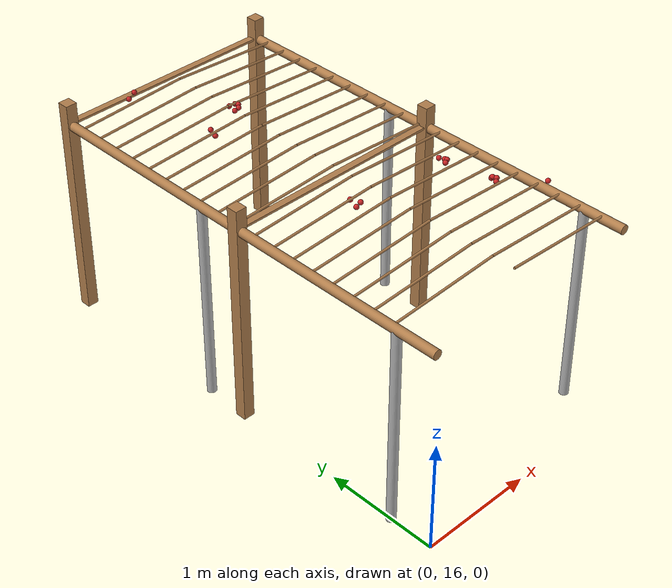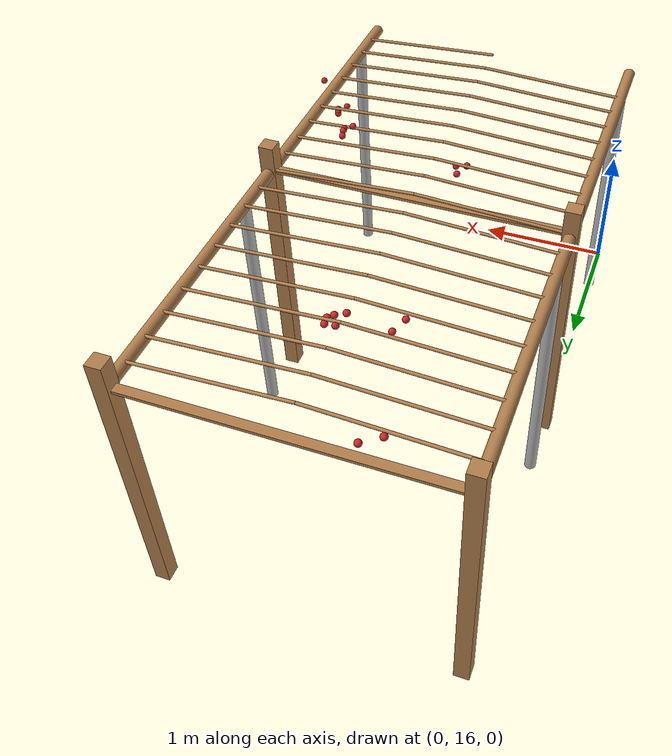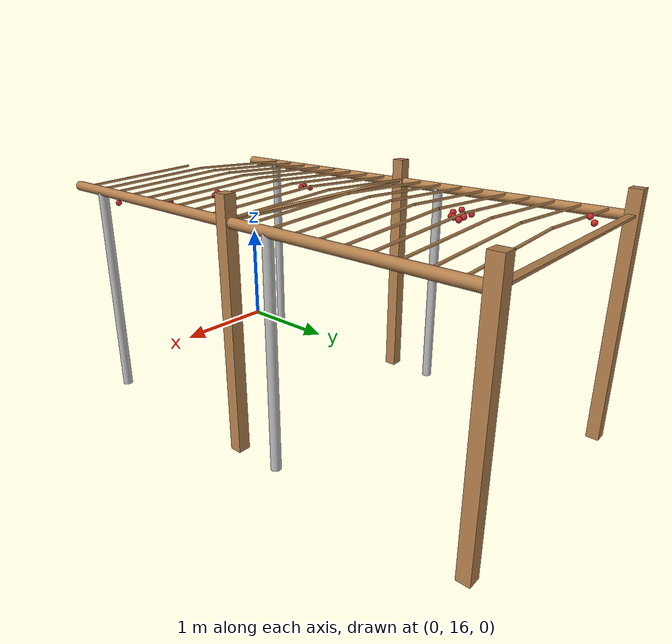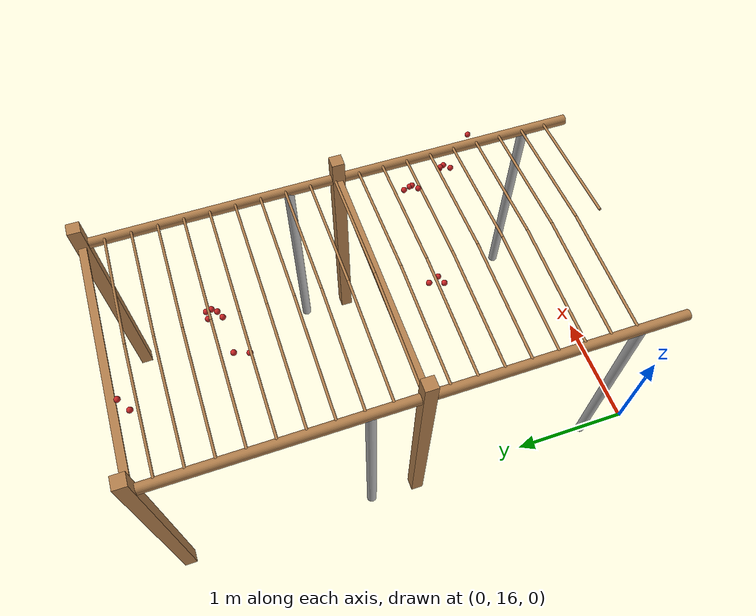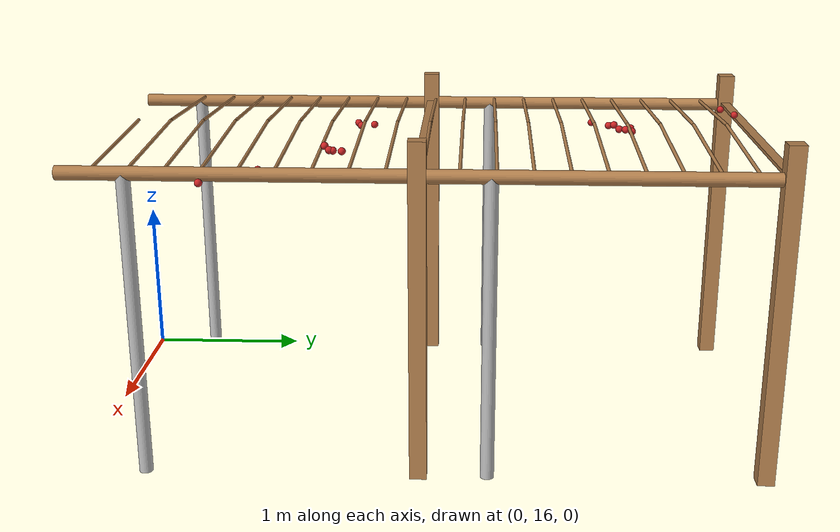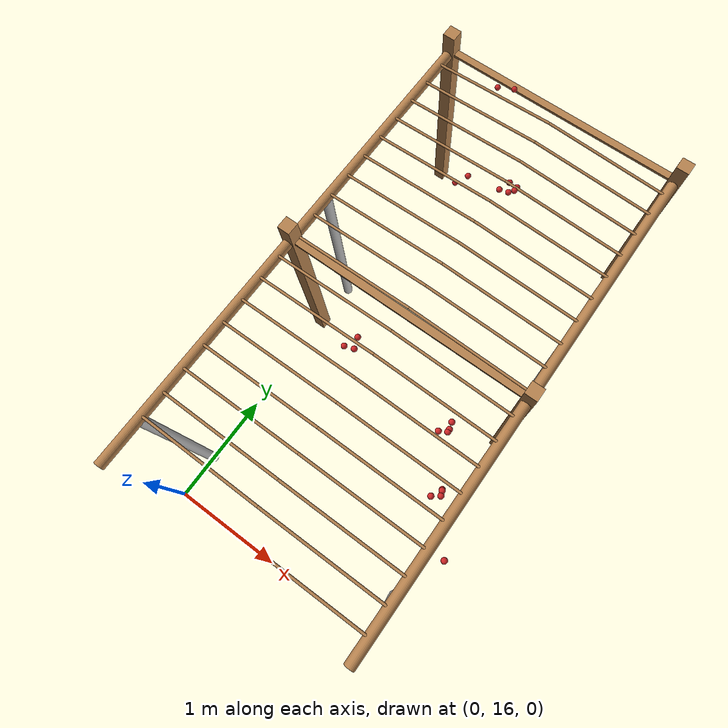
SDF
<sdf version="1.4">
 <model name="pergola">
  <include><name>post_9</name><pose>0.0 18.0 0 0 0 0</pose><uri>model://post</uri></include>
  <include><name>post_10</name><pose>0.0 20.0 0 0 0 0</pose><uri>model://post</uri></include>
  <include><name>post_20</name><pose>2.0 18.0 0 0 0 0</pose><uri>model://post</uri></include>
  <include><name>post_21</name><pose>2.0 20.0 0 0 0 0</pose><uri>model://post</uri></include>
  <link name="beam_9">
   <pose>1.0 18.0 1.81 0 0 0</pose>
   <collision name="collision"><geometry><box><size>2.0 0.06 0.02</size></box></geometry></collision>
   <visual name="visual">
    <geometry><box><size>2.0 0.06 0.02</size></box></geometry>
    <material><script><name>Gazebo/Wood</name></script></material>
   </visual>
   <inertial>
    <mass>5</mass>
    <inertia>
     <ixx>0.0016666666666666668</ixx>
     <ixy>0.0</ixy>
     <ixz>0.0</ixz>
     <iyy>1.6681666666666664</iyy>
     <iyz>0.0</iyz>
     <izz>1.6668333333333332</izz>
    </inertia>
   </inertial>
  </link>
  <link name="beam_10">
   <pose>1.0 20.0 1.81 0 0 0</pose>
   <collision name="collision"><geometry><box><size>2.0 0.06 0.02</size></box></geometry></collision>
   <visual name="visual">
    <geometry><box><size>2.0 0.06 0.02</size></box></geometry>
    <material><script><name>Gazebo/Wood</name></script></material>
   </visual>
   <inertial>
    <mass>5</mass>
    <inertia>
     <ixx>0.0016666666666666668</ixx>
     <ixy>0.0</ixy>
     <ixz>0.0</ixz>
     <iyy>1.6681666666666664</iyy>
     <iyz>0.0</iyz>
     <izz>1.6668333333333332</izz>
    </inertia>
   </inertial>
  </link>
  <include><name>tree_8</name><pose>0.0 16.4 0 0 0 0</pose><uri>model://tree_trunk</uri></include>
  <include><name>tree_9</name><pose>0.0 18.4 0 0 0 0</pose><uri>model://tree_trunk</uri></include>
  <include><name>tree_18</name><pose>2.0 16.4 0 0 0 0</pose><uri>model://tree_trunk</uri></include>
  <include><name>tree_19</name><pose>2.0 18.4 0 0 0 0</pose><uri>model://tree_trunk</uri></include>
  <link name="baseBranch_8">
   <pose>0.0 17.0 1.8 1.5707963267948966 0 0</pose>
   <collision name="collision">
    <geometry><cylinder><radius>0.04</radius><length>1.94</length></cylinder></geometry>
   </collision>
   <visual name="visual">
    <geometry><cylinder><radius>0.04</radius><length>1.94</length></cylinder></geometry>
    <material><script><name>Gazebo/WoodFloor</name></script></material>
   </visual>
   <inertial>
    <mass>10</mass>
    <inertia>
     <ixx>3.140333333333333</ixx>
     <ixy>0.0</ixy>
     <ixz>0.0</ixz>
     <iyy>3.140333333333333</iyy>
     <iyz>0.0</iyz>
     <izz>0.008</izz>
    </inertia>
   </inertial>
  </link>
  <link name="baseBranch_9">
   <pose>0.0 19.0 1.8 1.5707963267948966 0 0</pose>
   <collision name="collision">
    <geometry><cylinder><radius>0.04</radius><length>1.94</length></cylinder></geometry>
   </collision>
   <visual name="visual">
    <geometry><cylinder><radius>0.04</radius><length>1.94</length></cylinder></geometry>
    <material><script><name>Gazebo/WoodFloor</name></script></material>
   </visual>
   <inertial>
    <mass>10</mass>
    <inertia>
     <ixx>3.140333333333333</ixx>
     <ixy>0.0</ixy>
     <ixz>0.0</ixz>
     <iyy>3.140333333333333</iyy>
     <iyz>0.0</iyz>
     <izz>0.008</izz>
    </inertia>
   </inertial>
  </link>
  <link name="baseBranch_18">
   <pose>2.0 17.0 1.8 1.5707963267948966 0 0</pose>
   <collision name="collision">
    <geometry><cylinder><radius>0.04</radius><length>1.94</length></cylinder></geometry>
   </collision>
   <visual name="visual">
    <geometry><cylinder><radius>0.04</radius><length>1.94</length></cylinder></geometry>
    <material><script><name>Gazebo/WoodFloor</name></script></material>
   </visual>
   <inertial>
    <mass>10</mass>
    <inertia>
     <ixx>3.140333333333333</ixx>
     <ixy>0.0</ixy>
     <ixz>0.0</ixz>
     <iyy>3.140333333333333</iyy>
     <iyz>0.0</iyz>
     <izz>0.008</izz>
    </inertia>
   </inertial>
  </link>
  <link name="baseBranch_19">
   <pose>2.0 19.0 1.8 1.5707963267948966 0 0</pose>
   <collision name="collision">
    <geometry><cylinder><radius>0.04</radius><length>1.94</length></cylinder></geometry>
   </collision>
   <visual name="visual">
    <geometry><cylinder><radius>0.04</radius><length>1.94</length></cylinder></geometry>
    <material><script><name>Gazebo/WoodFloor</name></script></material>
   </visual>
   <inertial>
    <mass>10</mass>
    <inertia>
     <ixx>3.140333333333333</ixx>
     <ixy>0.0</ixy>
     <ixz>0.0</ixz>
     <iyy>3.140333333333333</iyy>
     <iyz>0.0</iyz>
     <izz>0.008</izz>
    </inertia>
   </inertial>
  </link>
  <link name="vine_163">
   <pose>1.5 16.23 1.85 0 -1.5208379310729538 0</pose>
   <collision name="collision">
    <geometry><cylinder><radius>0.01</radius><length>1.0012492197250393</length></cylinder></geometry>
   </collision>
   <visual name="visual">
    <geometry><cylinder><radius>0.01</radius><length>1.0012492197250393</length></cylinder></geometry>
    <material><script><name>Gazebo/WoodFloor</name></script></material>
   </visual>
   <inertial>
    <mass>5</mass>
    <inertia>
     <ixx>0.41783333333333345</ixx>
     <ixy>0.0</ixy>
     <ixz>0.0</ixz>
     <iyy>0.41783333333333345</iyy>
     <iyz>0.0</iyz>
     <izz>0.00025</izz>
    </inertia>
   </inertial>
  </link>
  <link name="vine_164">
   <pose>0.5 16.430000000000003 1.85 0 1.5208379310729538 0</pose>
   <collision name="collision">
    <geometry><cylinder><radius>0.01</radius><length>1.0012492197250393</length></cylinder></geometry>
   </collision>
   <visual name="visual">
    <geometry><cylinder><radius>0.01</radius><length>1.0012492197250393</length></cylinder></geometry>
    <material><script><name>Gazebo/WoodFloor</name></script></material>
   </visual>
   <inertial>
    <mass>5</mass>
    <inertia>
     <ixx>0.41783333333333345</ixx>
     <ixy>0.0</ixy>
     <ixz>0.0</ixz>
     <iyy>0.41783333333333345</iyy>
     <iyz>0.0</iyz>
     <izz>0.00025</izz>
    </inertia>
   </inertial>
  </link>
  <link name="vine_165">
   <pose>1.5 16.430000000000003 1.85 0 -1.5208379310729538 0</pose>
   <collision name="collision">
    <geometry><cylinder><radius>0.01</radius><length>1.0012492197250393</length></cylinder></geometry>
   </collision>
   <visual name="visual">
    <geometry><cylinder><radius>0.01</radius><length>1.0012492197250393</length></cylinder></geometry>
    <material><script><name>Gazebo/WoodFloor</name></script></material>
   </visual>
   <inertial>
    <mass>5</mass>
    <inertia>
     <ixx>0.41783333333333345</ixx>
     <ixy>0.0</ixy>
     <ixz>0.0</ixz>
     <iyy>0.41783333333333345</iyy>
     <iyz>0.0</iyz>
     <izz>0.00025</izz>
    </inertia>
   </inertial>
  </link>
  <link name="vine_166">
   <pose>0.5 16.630000000000003 1.85 0 1.5208379310729538 0</pose>
   <collision name="collision">
    <geometry><cylinder><radius>0.01</radius><length>1.0012492197250393</length></cylinder></geometry>
   </collision>
   <visual name="visual">
    <geometry><cylinder><radius>0.01</radius><length>1.0012492197250393</length></cylinder></geometry>
    <material><script><name>Gazebo/WoodFloor</name></script></material>
   </visual>
   <inertial>
    <mass>5</mass>
    <inertia>
     <ixx>0.41783333333333345</ixx>
     <ixy>0.0</ixy>
     <ixz>0.0</ixz>
     <iyy>0.41783333333333345</iyy>
     <iyz>0.0</iyz>
     <izz>0.00025</izz>
    </inertia>
   </inertial>
  </link>
  <link name="vine_167">
   <pose>1.5 16.630000000000003 1.85 0 -1.5208379310729538 0</pose>
   <collision name="collision">
    <geometry><cylinder><radius>0.01</radius><length>1.0012492197250393</length></cylinder></geometry>
   </collision>
   <visual name="visual">
    <geometry><cylinder><radius>0.01</radius><length>1.0012492197250393</length></cylinder></geometry>
    <material><script><name>Gazebo/WoodFloor</name></script></material>
   </visual>
   <inertial>
    <mass>5</mass>
    <inertia>
     <ixx>0.41783333333333345</ixx>
     <ixy>0.0</ixy>
     <ixz>0.0</ixz>
     <iyy>0.41783333333333345</iyy>
     <iyz>0.0</iyz>
     <izz>0.00025</izz>
    </inertia>
   </inertial>
  </link>
  <link name="vine_168">
   <pose>0.5 16.830000000000002 1.85 0 1.5208379310729538 0</pose>
   <collision name="collision">
    <geometry><cylinder><radius>0.01</radius><length>1.0012492197250393</length></cylinder></geometry>
   </collision>
   <visual name="visual">
    <geometry><cylinder><radius>0.01</radius><length>1.0012492197250393</length></cylinder></geometry>
    <material><script><name>Gazebo/WoodFloor</name></script></material>
   </visual>
   <inertial>
    <mass>5</mass>
    <inertia>
     <ixx>0.41783333333333345</ixx>
     <ixy>0.0</ixy>
     <ixz>0.0</ixz>
     <iyy>0.41783333333333345</iyy>
     <iyz>0.0</iyz>
     <izz>0.00025</izz>
    </inertia>
   </inertial>
  </link>
  <link name="vine_169">
   <pose>1.5 16.830000000000002 1.85 0 -1.5208379310729538 0</pose>
   <collision name="collision">
    <geometry><cylinder><radius>0.01</radius><length>1.0012492197250393</length></cylinder></geometry>
   </collision>
   <visual name="visual">
    <geometry><cylinder><radius>0.01</radius><length>1.0012492197250393</length></cylinder></geometry>
    <material><script><name>Gazebo/WoodFloor</name></script></material>
   </visual>
   <inertial>
    <mass>5</mass>
    <inertia>
     <ixx>0.41783333333333345</ixx>
     <ixy>0.0</ixy>
     <ixz>0.0</ixz>
     <iyy>0.41783333333333345</iyy>
     <iyz>0.0</iyz>
     <izz>0.00025</izz>
    </inertia>
   </inertial>
  </link>
  <link name="vine_170">
   <pose>0.5 17.03 1.85 0 1.5208379310729538 0</pose>
   <collision name="collision">
    <geometry><cylinder><radius>0.01</radius><length>1.0012492197250393</length></cylinder></geometry>
   </collision>
   <visual name="visual">
    <geometry><cylinder><radius>0.01</radius><length>1.0012492197250393</length></cylinder></geometry>
    <material><script><name>Gazebo/WoodFloor</name></script></material>
   </visual>
   <inertial>
    <mass>5</mass>
    <inertia>
     <ixx>0.41783333333333345</ixx>
     <ixy>0.0</ixy>
     <ixz>0.0</ixz>
     <iyy>0.41783333333333345</iyy>
     <iyz>0.0</iyz>
     <izz>0.00025</izz>
    </inertia>
   </inertial>
  </link>
  <link name="vine_171">
   <pose>1.5 17.03 1.85 0 -1.5208379310729538 0</pose>
   <collision name="collision">
    <geometry><cylinder><radius>0.01</radius><length>1.0012492197250393</length></cylinder></geometry>
   </collision>
   <visual name="visual">
    <geometry><cylinder><radius>0.01</radius><length>1.0012492197250393</length></cylinder></geometry>
    <material><script><name>Gazebo/WoodFloor</name></script></material>
   </visual>
   <inertial>
    <mass>5</mass>
    <inertia>
     <ixx>0.41783333333333345</ixx>
     <ixy>0.0</ixy>
     <ixz>0.0</ixz>
     <iyy>0.41783333333333345</iyy>
     <iyz>0.0</iyz>
     <izz>0.00025</izz>
    </inertia>
   </inertial>
  </link>
  <link name="vine_172">
   <pose>0.5 17.23 1.85 0 1.5208379310729538 0</pose>
   <collision name="collision">
    <geometry><cylinder><radius>0.01</radius><length>1.0012492197250393</length></cylinder></geometry>
   </collision>
   <visual name="visual">
    <geometry><cylinder><radius>0.01</radius><length>1.0012492197250393</length></cylinder></geometry>
    <material><script><name>Gazebo/WoodFloor</name></script></material>
   </visual>
   <inertial>
    <mass>5</mass>
    <inertia>
     <ixx>0.41783333333333345</ixx>
     <ixy>0.0</ixy>
     <ixz>0.0</ixz>
     <iyy>0.41783333333333345</iyy>
     <iyz>0.0</iyz>
     <izz>0.00025</izz>
    </inertia>
   </inertial>
  </link>
  <link name="vine_173">
   <pose>1.5 17.23 1.85 0 -1.5208379310729538 0</pose>
   <collision name="collision">
    <geometry><cylinder><radius>0.01</radius><length>1.0012492197250393</length></cylinder></geometry>
   </collision>
   <visual name="visual">
    <geometry><cylinder><radius>0.01</radius><length>1.0012492197250393</length></cylinder></geometry>
    <material><script><name>Gazebo/WoodFloor</name></script></material>
   </visual>
   <inertial>
    <mass>5</mass>
    <inertia>
     <ixx>0.41783333333333345</ixx>
     <ixy>0.0</ixy>
     <ixz>0.0</ixz>
     <iyy>0.41783333333333345</iyy>
     <iyz>0.0</iyz>
     <izz>0.00025</izz>
    </inertia>
   </inertial>
  </link>
  <link name="vine_174">
   <pose>0.5 17.430000000000003 1.85 0 1.5208379310729538 0</pose>
   <collision name="collision">
    <geometry><cylinder><radius>0.01</radius><length>1.0012492197250393</length></cylinder></geometry>
   </collision>
   <visual name="visual">
    <geometry><cylinder><radius>0.01</radius><length>1.0012492197250393</length></cylinder></geometry>
    <material><script><name>Gazebo/WoodFloor</name></script></material>
   </visual>
   <inertial>
    <mass>5</mass>
    <inertia>
     <ixx>0.41783333333333345</ixx>
     <ixy>0.0</ixy>
     <ixz>0.0</ixz>
     <iyy>0.41783333333333345</iyy>
     <iyz>0.0</iyz>
     <izz>0.00025</izz>
    </inertia>
   </inertial>
  </link>
  <link name="vine_175">
   <pose>1.5 17.430000000000003 1.85 0 -1.5208379310729538 0</pose>
   <collision name="collision">
    <geometry><cylinder><radius>0.01</radius><length>1.0012492197250393</length></cylinder></geometry>
   </collision>
   <visual name="visual">
    <geometry><cylinder><radius>0.01</radius><length>1.0012492197250393</length></cylinder></geometry>
    <material><script><name>Gazebo/WoodFloor</name></script></material>
   </visual>
   <inertial>
    <mass>5</mass>
    <inertia>
     <ixx>0.41783333333333345</ixx>
     <ixy>0.0</ixy>
     <ixz>0.0</ixz>
     <iyy>0.41783333333333345</iyy>
     <iyz>0.0</iyz>
     <izz>0.00025</izz>
    </inertia>
   </inertial>
  </link>
  <link name="vine_176">
   <pose>0.5 17.630000000000003 1.85 0 1.5208379310729538 0</pose>
   <collision name="collision">
    <geometry><cylinder><radius>0.01</radius><length>1.0012492197250393</length></cylinder></geometry>
   </collision>
   <visual name="visual">
    <geometry><cylinder><radius>0.01</radius><length>1.0012492197250393</length></cylinder></geometry>
    <material><script><name>Gazebo/WoodFloor</name></script></material>
   </visual>
   <inertial>
    <mass>5</mass>
    <inertia>
     <ixx>0.41783333333333345</ixx>
     <ixy>0.0</ixy>
     <ixz>0.0</ixz>
     <iyy>0.41783333333333345</iyy>
     <iyz>0.0</iyz>
     <izz>0.00025</izz>
    </inertia>
   </inertial>
  </link>
  <link name="vine_177">
   <pose>1.5 17.630000000000003 1.85 0 -1.5208379310729538 0</pose>
   <collision name="collision">
    <geometry><cylinder><radius>0.01</radius><length>1.0012492197250393</length></cylinder></geometry>
   </collision>
   <visual name="visual">
    <geometry><cylinder><radius>0.01</radius><length>1.0012492197250393</length></cylinder></geometry>
    <material><script><name>Gazebo/WoodFloor</name></script></material>
   </visual>
   <inertial>
    <mass>5</mass>
    <inertia>
     <ixx>0.41783333333333345</ixx>
     <ixy>0.0</ixy>
     <ixz>0.0</ixz>
     <iyy>0.41783333333333345</iyy>
     <iyz>0.0</iyz>
     <izz>0.00025</izz>
    </inertia>
   </inertial>
  </link>
  <link name="vine_178">
   <pose>0.5 17.830000000000002 1.85 0 1.5208379310729538 0</pose>
   <collision name="collision">
    <geometry><cylinder><radius>0.01</radius><length>1.0012492197250393</length></cylinder></geometry>
   </collision>
   <visual name="visual">
    <geometry><cylinder><radius>0.01</radius><length>1.0012492197250393</length></cylinder></geometry>
    <material><script><name>Gazebo/WoodFloor</name></script></material>
   </visual>
   <inertial>
    <mass>5</mass>
    <inertia>
     <ixx>0.41783333333333345</ixx>
     <ixy>0.0</ixy>
     <ixz>0.0</ixz>
     <iyy>0.41783333333333345</iyy>
     <iyz>0.0</iyz>
     <izz>0.00025</izz>
    </inertia>
   </inertial>
  </link>
  <link name="vine_179">
   <pose>1.5 17.830000000000002 1.85 0 -1.5208379310729538 0</pose>
   <collision name="collision">
    <geometry><cylinder><radius>0.01</radius><length>1.0012492197250393</length></cylinder></geometry>
   </collision>
   <visual name="visual">
    <geometry><cylinder><radius>0.01</radius><length>1.0012492197250393</length></cylinder></geometry>
    <material><script><name>Gazebo/WoodFloor</name></script></material>
   </visual>
   <inertial>
    <mass>5</mass>
    <inertia>
     <ixx>0.41783333333333345</ixx>
     <ixy>0.0</ixy>
     <ixz>0.0</ixz>
     <iyy>0.41783333333333345</iyy>
     <iyz>0.0</iyz>
     <izz>0.00025</izz>
    </inertia>
   </inertial>
  </link>
  <link name="vine_180">
   <pose>0.5 18.03 1.85 0 1.5208379310729538 0</pose>
   <collision name="collision">
    <geometry><cylinder><radius>0.01</radius><length>1.0012492197250393</length></cylinder></geometry>
   </collision>
   <visual name="visual">
    <geometry><cylinder><radius>0.01</radius><length>1.0012492197250393</length></cylinder></geometry>
    <material><script><name>Gazebo/WoodFloor</name></script></material>
   </visual>
   <inertial>
    <mass>5</mass>
    <inertia>
     <ixx>0.41783333333333345</ixx>
     <ixy>0.0</ixy>
     <ixz>0.0</ixz>
     <iyy>0.41783333333333345</iyy>
     <iyz>0.0</iyz>
     <izz>0.00025</izz>
    </inertia>
   </inertial>
  </link>
  <link name="vine_181">
   <pose>1.5 18.03 1.85 0 -1.5208379310729538 0</pose>
   <collision name="collision">
    <geometry><cylinder><radius>0.01</radius><length>1.0012492197250393</length></cylinder></geometry>
   </collision>
   <visual name="visual">
    <geometry><cylinder><radius>0.01</radius><length>1.0012492197250393</length></cylinder></geometry>
    <material><script><name>Gazebo/WoodFloor</name></script></material>
   </visual>
   <inertial>
    <mass>5</mass>
    <inertia>
     <ixx>0.41783333333333345</ixx>
     <ixy>0.0</ixy>
     <ixz>0.0</ixz>
     <iyy>0.41783333333333345</iyy>
     <iyz>0.0</iyz>
     <izz>0.00025</izz>
    </inertia>
   </inertial>
  </link>
  <link name="vine_182">
   <pose>0.5 18.23 1.85 0 1.5208379310729538 0</pose>
   <collision name="collision">
    <geometry><cylinder><radius>0.01</radius><length>1.0012492197250393</length></cylinder></geometry>
   </collision>
   <visual name="visual">
    <geometry><cylinder><radius>0.01</radius><length>1.0012492197250393</length></cylinder></geometry>
    <material><script><name>Gazebo/WoodFloor</name></script></material>
   </visual>
   <inertial>
    <mass>5</mass>
    <inertia>
     <ixx>0.41783333333333345</ixx>
     <ixy>0.0</ixy>
     <ixz>0.0</ixz>
     <iyy>0.41783333333333345</iyy>
     <iyz>0.0</iyz>
     <izz>0.00025</izz>
    </inertia>
   </inertial>
  </link>
  <link name="vine_183">
   <pose>1.5 18.23 1.85 0 -1.5208379310729538 0</pose>
   <collision name="collision">
    <geometry><cylinder><radius>0.01</radius><length>1.0012492197250393</length></cylinder></geometry>
   </collision>
   <visual name="visual">
    <geometry><cylinder><radius>0.01</radius><length>1.0012492197250393</length></cylinder></geometry>
    <material><script><name>Gazebo/WoodFloor</name></script></material>
   </visual>
   <inertial>
    <mass>5</mass>
    <inertia>
     <ixx>0.41783333333333345</ixx>
     <ixy>0.0</ixy>
     <ixz>0.0</ixz>
     <iyy>0.41783333333333345</iyy>
     <iyz>0.0</iyz>
     <izz>0.00025</izz>
    </inertia>
   </inertial>
  </link>
  <link name="vine_184">
   <pose>0.5 18.430000000000003 1.85 0 1.5208379310729538 0</pose>
   <collision name="collision">
    <geometry><cylinder><radius>0.01</radius><length>1.0012492197250393</length></cylinder></geometry>
   </collision>
   <visual name="visual">
    <geometry><cylinder><radius>0.01</radius><length>1.0012492197250393</length></cylinder></geometry>
    <material><script><name>Gazebo/WoodFloor</name></script></material>
   </visual>
   <inertial>
    <mass>5</mass>
    <inertia>
     <ixx>0.41783333333333345</ixx>
     <ixy>0.0</ixy>
     <ixz>0.0</ixz>
     <iyy>0.41783333333333345</iyy>
     <iyz>0.0</iyz>
     <izz>0.00025</izz>
    </inertia>
   </inertial>
  </link>
  <link name="vine_185">
   <pose>1.5 18.430000000000003 1.85 0 -1.5208379310729538 0</pose>
   <collision name="collision">
    <geometry><cylinder><radius>0.01</radius><length>1.0012492197250393</length></cylinder></geometry>
   </collision>
   <visual name="visual">
    <geometry><cylinder><radius>0.01</radius><length>1.0012492197250393</length></cylinder></geometry>
    <material><script><name>Gazebo/WoodFloor</name></script></material>
   </visual>
   <inertial>
    <mass>5</mass>
    <inertia>
     <ixx>0.41783333333333345</ixx>
     <ixy>0.0</ixy>
     <ixz>0.0</ixz>
     <iyy>0.41783333333333345</iyy>
     <iyz>0.0</iyz>
     <izz>0.00025</izz>
    </inertia>
   </inertial>
  </link>
  <link name="vine_186">
   <pose>0.5 18.630000000000003 1.85 0 1.5208379310729538 0</pose>
   <collision name="collision">
    <geometry><cylinder><radius>0.01</radius><length>1.0012492197250393</length></cylinder></geometry>
   </collision>
   <visual name="visual">
    <geometry><cylinder><radius>0.01</radius><length>1.0012492197250393</length></cylinder></geometry>
    <material><script><name>Gazebo/WoodFloor</name></script></material>
   </visual>
   <inertial>
    <mass>5</mass>
    <inertia>
     <ixx>0.41783333333333345</ixx>
     <ixy>0.0</ixy>
     <ixz>0.0</ixz>
     <iyy>0.41783333333333345</iyy>
     <iyz>0.0</iyz>
     <izz>0.00025</izz>
    </inertia>
   </inertial>
  </link>
  <link name="vine_187">
   <pose>1.5 18.630000000000003 1.85 0 -1.5208379310729538 0</pose>
   <collision name="collision">
    <geometry><cylinder><radius>0.01</radius><length>1.0012492197250393</length></cylinder></geometry>
   </collision>
   <visual name="visual">
    <geometry><cylinder><radius>0.01</radius><length>1.0012492197250393</length></cylinder></geometry>
    <material><script><name>Gazebo/WoodFloor</name></script></material>
   </visual>
   <inertial>
    <mass>5</mass>
    <inertia>
     <ixx>0.41783333333333345</ixx>
     <ixy>0.0</ixy>
     <ixz>0.0</ixz>
     <iyy>0.41783333333333345</iyy>
     <iyz>0.0</iyz>
     <izz>0.00025</izz>
    </inertia>
   </inertial>
  </link>
  <link name="vine_188">
   <pose>0.5 18.830000000000002 1.85 0 1.5208379310729538 0</pose>
   <collision name="collision">
    <geometry><cylinder><radius>0.01</radius><length>1.0012492197250393</length></cylinder></geometry>
   </collision>
   <visual name="visual">
    <geometry><cylinder><radius>0.01</radius><length>1.0012492197250393</length></cylinder></geometry>
    <material><script><name>Gazebo/WoodFloor</name></script></material>
   </visual>
   <inertial>
    <mass>5</mass>
    <inertia>
     <ixx>0.41783333333333345</ixx>
     <ixy>0.0</ixy>
     <ixz>0.0</ixz>
     <iyy>0.41783333333333345</iyy>
     <iyz>0.0</iyz>
     <izz>0.00025</izz>
    </inertia>
   </inertial>
  </link>
  <link name="vine_189">
   <pose>1.5 18.830000000000002 1.85 0 -1.5208379310729538 0</pose>
   <collision name="collision">
    <geometry><cylinder><radius>0.01</radius><length>1.0012492197250393</length></cylinder></geometry>
   </collision>
   <visual name="visual">
    <geometry><cylinder><radius>0.01</radius><length>1.0012492197250393</length></cylinder></geometry>
    <material><script><name>Gazebo/WoodFloor</name></script></material>
   </visual>
   <inertial>
    <mass>5</mass>
    <inertia>
     <ixx>0.41783333333333345</ixx>
     <ixy>0.0</ixy>
     <ixz>0.0</ixz>
     <iyy>0.41783333333333345</iyy>
     <iyz>0.0</iyz>
     <izz>0.00025</izz>
    </inertia>
   </inertial>
  </link>
  <link name="vine_190">
   <pose>0.5 19.03 1.85 0 1.5208379310729538 0</pose>
   <collision name="collision">
    <geometry><cylinder><radius>0.01</radius><length>1.0012492197250393</length></cylinder></geometry>
   </collision>
   <visual name="visual">
    <geometry><cylinder><radius>0.01</radius><length>1.0012492197250393</length></cylinder></geometry>
    <material><script><name>Gazebo/WoodFloor</name></script></material>
   </visual>
   <inertial>
    <mass>5</mass>
    <inertia>
     <ixx>0.41783333333333345</ixx>
     <ixy>0.0</ixy>
     <ixz>0.0</ixz>
     <iyy>0.41783333333333345</iyy>
     <iyz>0.0</iyz>
     <izz>0.00025</izz>
    </inertia>
   </inertial>
  </link>
  <link name="vine_191">
   <pose>1.5 19.03 1.85 0 -1.5208379310729538 0</pose>
   <collision name="collision">
    <geometry><cylinder><radius>0.01</radius><length>1.0012492197250393</length></cylinder></geometry>
   </collision>
   <visual name="visual">
    <geometry><cylinder><radius>0.01</radius><length>1.0012492197250393</length></cylinder></geometry>
    <material><script><name>Gazebo/WoodFloor</name></script></material>
   </visual>
   <inertial>
    <mass>5</mass>
    <inertia>
     <ixx>0.41783333333333345</ixx>
     <ixy>0.0</ixy>
     <ixz>0.0</ixz>
     <iyy>0.41783333333333345</iyy>
     <iyz>0.0</iyz>
     <izz>0.00025</izz>
    </inertia>
   </inertial>
  </link>
  <link name="vine_192">
   <pose>0.5 19.230000000000004 1.85 0 1.5208379310729538 0</pose>
   <collision name="collision">
    <geometry><cylinder><radius>0.01</radius><length>1.0012492197250393</length></cylinder></geometry>
   </collision>
   <visual name="visual">
    <geometry><cylinder><radius>0.01</radius><length>1.0012492197250393</length></cylinder></geometry>
    <material><script><name>Gazebo/WoodFloor</name></script></material>
   </visual>
   <inertial>
    <mass>5</mass>
    <inertia>
     <ixx>0.41783333333333345</ixx>
     <ixy>0.0</ixy>
     <ixz>0.0</ixz>
     <iyy>0.41783333333333345</iyy>
     <iyz>0.0</iyz>
     <izz>0.00025</izz>
    </inertia>
   </inertial>
  </link>
  <link name="vine_193">
   <pose>1.5 19.230000000000004 1.85 0 -1.5208379310729538 0</pose>
   <collision name="collision">
    <geometry><cylinder><radius>0.01</radius><length>1.0012492197250393</length></cylinder></geometry>
   </collision>
   <visual name="visual">
    <geometry><cylinder><radius>0.01</radius><length>1.0012492197250393</length></cylinder></geometry>
    <material><script><name>Gazebo/WoodFloor</name></script></material>
   </visual>
   <inertial>
    <mass>5</mass>
    <inertia>
     <ixx>0.41783333333333345</ixx>
     <ixy>0.0</ixy>
     <ixz>0.0</ixz>
     <iyy>0.41783333333333345</iyy>
     <iyz>0.0</iyz>
     <izz>0.00025</izz>
    </inertia>
   </inertial>
  </link>
  <link name="vine_194">
   <pose>0.5 19.430000000000003 1.85 0 1.5208379310729538 0</pose>
   <collision name="collision">
    <geometry><cylinder><radius>0.01</radius><length>1.0012492197250393</length></cylinder></geometry>
   </collision>
   <visual name="visual">
    <geometry><cylinder><radius>0.01</radius><length>1.0012492197250393</length></cylinder></geometry>
    <material><script><name>Gazebo/WoodFloor</name></script></material>
   </visual>
   <inertial>
    <mass>5</mass>
    <inertia>
     <ixx>0.41783333333333345</ixx>
     <ixy>0.0</ixy>
     <ixz>0.0</ixz>
     <iyy>0.41783333333333345</iyy>
     <iyz>0.0</iyz>
     <izz>0.00025</izz>
    </inertia>
   </inertial>
  </link>
  <link name="vine_195">
   <pose>1.5 19.430000000000003 1.85 0 -1.5208379310729538 0</pose>
   <collision name="collision">
    <geometry><cylinder><radius>0.01</radius><length>1.0012492197250393</length></cylinder></geometry>
   </collision>
   <visual name="visual">
    <geometry><cylinder><radius>0.01</radius><length>1.0012492197250393</length></cylinder></geometry>
    <material><script><name>Gazebo/WoodFloor</name></script></material>
   </visual>
   <inertial>
    <mass>5</mass>
    <inertia>
     <ixx>0.41783333333333345</ixx>
     <ixy>0.0</ixy>
     <ixz>0.0</ixz>
     <iyy>0.41783333333333345</iyy>
     <iyz>0.0</iyz>
     <izz>0.00025</izz>
    </inertia>
   </inertial>
  </link>
  <link name="vine_196">
   <pose>0.5 19.630000000000003 1.85 0 1.5208379310729538 0</pose>
   <collision name="collision">
    <geometry><cylinder><radius>0.01</radius><length>1.0012492197250393</length></cylinder></geometry>
   </collision>
   <visual name="visual">
    <geometry><cylinder><radius>0.01</radius><length>1.0012492197250393</length></cylinder></geometry>
    <material><script><name>Gazebo/WoodFloor</name></script></material>
   </visual>
   <inertial>
    <mass>5</mass>
    <inertia>
     <ixx>0.41783333333333345</ixx>
     <ixy>0.0</ixy>
     <ixz>0.0</ixz>
     <iyy>0.41783333333333345</iyy>
     <iyz>0.0</iyz>
     <izz>0.00025</izz>
    </inertia>
   </inertial>
  </link>
  <link name="vine_197">
   <pose>1.5 19.630000000000003 1.85 0 -1.5208379310729538 0</pose>
   <collision name="collision">
    <geometry><cylinder><radius>0.01</radius><length>1.0012492197250393</length></cylinder></geometry>
   </collision>
   <visual name="visual">
    <geometry><cylinder><radius>0.01</radius><length>1.0012492197250393</length></cylinder></geometry>
    <material><script><name>Gazebo/WoodFloor</name></script></material>
   </visual>
   <inertial>
    <mass>5</mass>
    <inertia>
     <ixx>0.41783333333333345</ixx>
     <ixy>0.0</ixy>
     <ixz>0.0</ixz>
     <iyy>0.41783333333333345</iyy>
     <iyz>0.0</iyz>
     <izz>0.00025</izz>
    </inertia>
   </inertial>
  </link>
  <link name="vine_198">
   <pose>0.5 19.830000000000002 1.85 0 1.5208379310729538 0</pose>
   <collision name="collision">
    <geometry><cylinder><radius>0.01</radius><length>1.0012492197250393</length></cylinder></geometry>
   </collision>
   <visual name="visual">
    <geometry><cylinder><radius>0.01</radius><length>1.0012492197250393</length></cylinder></geometry>
    <material><script><name>Gazebo/WoodFloor</name></script></material>
   </visual>
   <inertial>
    <mass>5</mass>
    <inertia>
     <ixx>0.41783333333333345</ixx>
     <ixy>0.0</ixy>
     <ixz>0.0</ixz>
     <iyy>0.41783333333333345</iyy>
     <iyz>0.0</iyz>
     <izz>0.00025</izz>
    </inertia>
   </inertial>
  </link>
  <link name="vine_199">
   <pose>1.5 19.830000000000002 1.85 0 -1.5208379310729538 0</pose>
   <collision name="collision">
    <geometry><cylinder><radius>0.01</radius><length>1.0012492197250393</length></cylinder></geometry>
   </collision>
   <visual name="visual">
    <geometry><cylinder><radius>0.01</radius><length>1.0012492197250393</length></cylinder></geometry>
    <material><script><name>Gazebo/WoodFloor</name></script></material>
   </visual>
   <inertial>
    <mass>5</mass>
    <inertia>
     <ixx>0.41783333333333345</ixx>
     <ixy>0.0</ixy>
     <ixz>0.0</ixz>
     <iyy>0.41783333333333345</iyy>
     <iyz>0.0</iyz>
     <izz>0.00025</izz>
    </inertia>
   </inertial>
  </link>
  <link name="fruit_4">
   <pose>0.6959711042645819 19.03862980803379 1.817942183537003 0 0 0</pose>
   <collision name="fruit_collision_4"><geometry><sphere><radius>0.022</radius></sphere></geometry></collision>
   <visual name="visual">
    <geometry><sphere><radius>0.022</radius></sphere></geometry>
    <material><script><name>Gazebo/Red</name></script></material>
   </visual>
   <inertial>
    <mass>0.05</mass>
    <inertia>
     <ixx>9.679999999999999e-06</ixx>
     <ixy>0.0</ixy>
     <ixz>0.0</ixz>
     <iyy>9.679999999999999e-06</iyy>
     <iyz>0.0</iyz>
     <izz>9.679999999999999e-06</izz>
    </inertia>
   </inertial>
   <sensor name="fruit_contact_4" type="contact">
    <contact><collision>fruit_collision_4</collision></contact>
   </sensor>
  </link>
  <link name="fruit_55">
   <pose>0.7932675208111744 17.571773422293848 1.8246557193237452 0 0 0</pose>
   <collision name="fruit_collision_55"><geometry><sphere><radius>0.022</radius></sphere></geometry></collision>
   <visual name="visual">
    <geometry><sphere><radius>0.022</radius></sphere></geometry>
    <material><script><name>Gazebo/Red</name></script></material>
   </visual>
   <inertial>
    <mass>0.05</mass>
    <inertia>
     <ixx>9.679999999999999e-06</ixx>
     <ixy>0.0</ixy>
     <ixz>0.0</ixz>
     <iyy>9.679999999999999e-06</iyy>
     <iyz>0.0</iyz>
     <izz>9.679999999999999e-06</izz>
    </inertia>
   </inertial>
   <sensor name="fruit_contact_55" type="contact">
    <contact><collision>fruit_collision_55</collision></contact>
   </sensor>
  </link>
  <link name="fruit_115">
   <pose>1.0008467411872677 19.148199578619174 1.8695526502953397 0 0 0</pose>
   <collision name="fruit_collision_115"><geometry><sphere><radius>0.022</radius></sphere></geometry></collision>
   <visual name="visual">
    <geometry><sphere><radius>0.022</radius></sphere></geometry>
    <material><script><name>Gazebo/Red</name></script></material>
   </visual>
   <inertial>
    <mass>0.05</mass>
    <inertia>
     <ixx>9.679999999999999e-06</ixx>
     <ixy>0.0</ixy>
     <ixz>0.0</ixz>
     <iyy>9.679999999999999e-06</iyy>
     <iyz>0.0</iyz>
     <izz>9.679999999999999e-06</izz>
    </inertia>
   </inertial>
   <sensor name="fruit_contact_115" type="contact">
    <contact><collision>fruit_collision_115</collision></contact>
   </sensor>
  </link>
  <link name="fruit_224">
   <pose>2.117693308501142 16.84026634904485 1.782308622490543 0 0 0</pose>
   <collision name="fruit_collision_224"><geometry><sphere><radius>0.022</radius></sphere></geometry></collision>
   <visual name="visual">
    <geometry><sphere><radius>0.022</radius></sphere></geometry>
    <material><script><name>Gazebo/Red</name></script></material>
   </visual>
   <inertial>
    <mass>0.05</mass>
    <inertia>
     <ixx>9.679999999999999e-06</ixx>
     <ixy>0.0</ixy>
     <ixz>0.0</ixz>
     <iyy>9.679999999999999e-06</iyy>
     <iyz>0.0</iyz>
     <izz>9.679999999999999e-06</izz>
    </inertia>
   </inertial>
   <sensor name="fruit_contact_224" type="contact">
    <contact><collision>fruit_collision_224</collision></contact>
   </sensor>
  </link>
  <link name="fruit_237">
   <pose>1.828975479385755 17.10874973778749 1.7815757496740423 0 0 0</pose>
   <collision name="fruit_collision_237"><geometry><sphere><radius>0.022</radius></sphere></geometry></collision>
   <visual name="visual">
    <geometry><sphere><radius>0.022</radius></sphere></geometry>
    <material><script><name>Gazebo/Red</name></script></material>
   </visual>
   <inertial>
    <mass>0.05</mass>
    <inertia>
     <ixx>9.679999999999999e-06</ixx>
     <ixy>0.0</ixy>
     <ixz>0.0</ixz>
     <iyy>9.679999999999999e-06</iyy>
     <iyz>0.0</iyz>
     <izz>9.679999999999999e-06</izz>
    </inertia>
   </inertial>
   <sensor name="fruit_contact_237" type="contact">
    <contact><collision>fruit_collision_237</collision></contact>
   </sensor>
  </link>
  <link name="fruit_246">
   <pose>0.5097909716184765 19.879136453118548 1.8686049035816468 0 0 0</pose>
   <collision name="fruit_collision_246"><geometry><sphere><radius>0.022</radius></sphere></geometry></collision>
   <visual name="visual">
    <geometry><sphere><radius>0.022</radius></sphere></geometry>
    <material><script><name>Gazebo/Red</name></script></material>
   </visual>
   <inertial>
    <mass>0.05</mass>
    <inertia>
     <ixx>9.679999999999999e-06</ixx>
     <ixy>0.0</ixy>
     <ixz>0.0</ixz>
     <iyy>9.679999999999999e-06</iyy>
     <iyz>0.0</iyz>
     <izz>9.679999999999999e-06</izz>
    </inertia>
   </inertial>
   <sensor name="fruit_contact_246" type="contact">
    <contact><collision>fruit_collision_246</collision></contact>
   </sensor>
  </link>
  <link name="fruit_300">
   <pose>1.638586376054644 17.459140059477107 1.87590849647526 0 0 0</pose>
   <collision name="fruit_collision_300"><geometry><sphere><radius>0.022</radius></sphere></geometry></collision>
   <visual name="visual">
    <geometry><sphere><radius>0.022</radius></sphere></geometry>
    <material><script><name>Gazebo/Red</name></script></material>
   </visual>
   <inertial>
    <mass>0.05</mass>
    <inertia>
     <ixx>9.679999999999999e-06</ixx>
     <ixy>0.0</ixy>
     <ixz>0.0</ixz>
     <iyy>9.679999999999999e-06</iyy>
     <iyz>0.0</iyz>
     <izz>9.679999999999999e-06</izz>
    </inertia>
   </inertial>
   <sensor name="fruit_contact_300" type="contact">
    <contact><collision>fruit_collision_300</collision></contact>
   </sensor>
  </link>
  <link name="fruit_382">
   <pose>1.865182866062042 17.185409009758295 1.761261199709779 0 0 0</pose>
   <collision name="fruit_collision_382"><geometry><sphere><radius>0.022</radius></sphere></geometry></collision>
   <visual name="visual">
    <geometry><sphere><radius>0.022</radius></sphere></geometry>
    <material><script><name>Gazebo/Red</name></script></material>
   </visual>
   <inertial>
    <mass>0.05</mass>
    <inertia>
     <ixx>9.679999999999999e-06</ixx>
     <ixy>0.0</ixy>
     <ixz>0.0</ixz>
     <iyy>9.679999999999999e-06</iyy>
     <iyz>0.0</iyz>
     <izz>9.679999999999999e-06</izz>
    </inertia>
   </inertial>
   <sensor name="fruit_contact_382" type="contact">
    <contact><collision>fruit_collision_382</collision></contact>
   </sensor>
  </link>
  <link name="fruit_395">
   <pose>1.6755039059954482 17.56060173395721 1.8547616416938573 0 0 0</pose>
   <collision name="fruit_collision_395"><geometry><sphere><radius>0.022</radius></sphere></geometry></collision>
   <visual name="visual">
    <geometry><sphere><radius>0.022</radius></sphere></geometry>
    <material><script><name>Gazebo/Red</name></script></material>
   </visual>
   <inertial>
    <mass>0.05</mass>
    <inertia>
     <ixx>9.679999999999999e-06</ixx>
     <ixy>0.0</ixy>
     <ixz>0.0</ixz>
     <iyy>9.679999999999999e-06</iyy>
     <iyz>0.0</iyz>
     <izz>9.679999999999999e-06</izz>
    </inertia>
   </inertial>
   <sensor name="fruit_contact_395" type="contact">
    <contact><collision>fruit_collision_395</collision></contact>
   </sensor>
  </link>
  <link name="fruit_401">
   <pose>1.8801702912886729 17.14772143461287 1.773062699161368 0 0 0</pose>
   <collision name="fruit_collision_401"><geometry><sphere><radius>0.022</radius></sphere></geometry></collision>
   <visual name="visual">
    <geometry><sphere><radius>0.022</radius></sphere></geometry>
    <material><script><name>Gazebo/Red</name></script></material>
   </visual>
   <inertial>
    <mass>0.05</mass>
    <inertia>
     <ixx>9.679999999999999e-06</ixx>
     <ixy>0.0</ixy>
     <ixz>0.0</ixz>
     <iyy>9.679999999999999e-06</iyy>
     <iyz>0.0</iyz>
     <izz>9.679999999999999e-06</izz>
    </inertia>
   </inertial>
   <sensor name="fruit_contact_401" type="contact">
    <contact><collision>fruit_collision_401</collision></contact>
   </sensor>
  </link>
  <link name="fruit_405">
   <pose>0.7384161958136304 19.143645977974572 1.8082876062667952 0 0 0</pose>
   <collision name="fruit_collision_405"><geometry><sphere><radius>0.022</radius></sphere></geometry></collision>
   <visual name="visual">
    <geometry><sphere><radius>0.022</radius></sphere></geometry>
    <material><script><name>Gazebo/Red</name></script></material>
   </visual>
   <inertial>
    <mass>0.05</mass>
    <inertia>
     <ixx>9.679999999999999e-06</ixx>
     <ixy>0.0</ixy>
     <ixz>0.0</ixz>
     <iyy>9.679999999999999e-06</iyy>
     <iyz>0.0</iyz>
     <izz>9.679999999999999e-06</izz>
    </inertia>
   </inertial>
   <sensor name="fruit_contact_405" type="contact">
    <contact><collision>fruit_collision_405</collision></contact>
   </sensor>
  </link>
  <link name="fruit_407">
   <pose>1.8678465434147515 17.179084736136435 1.7730953685235915 0 0 0</pose>
   <collision name="fruit_collision_407"><geometry><sphere><radius>0.022</radius></sphere></geometry></collision>
   <visual name="visual">
    <geometry><sphere><radius>0.022</radius></sphere></geometry>
    <material><script><name>Gazebo/Red</name></script></material>
   </visual>
   <inertial>
    <mass>0.05</mass>
    <inertia>
     <ixx>9.679999999999999e-06</ixx>
     <ixy>0.0</ixy>
     <ixz>0.0</ixz>
     <iyy>9.679999999999999e-06</iyy>
     <iyz>0.0</iyz>
     <izz>9.679999999999999e-06</izz>
    </inertia>
   </inertial>
   <sensor name="fruit_contact_407" type="contact">
    <contact><collision>fruit_collision_407</collision></contact>
   </sensor>
  </link>
  <link name="fruit_489">
   <pose>0.8605209810207717 17.594638608096602 1.8222734680782844 0 0 0</pose>
   <collision name="fruit_collision_489"><geometry><sphere><radius>0.022</radius></sphere></geometry></collision>
   <visual name="visual">
    <geometry><sphere><radius>0.022</radius></sphere></geometry>
    <material><script><name>Gazebo/Red</name></script></material>
   </visual>
   <inertial>
    <mass>0.05</mass>
    <inertia>
     <ixx>9.679999999999999e-06</ixx>
     <ixy>0.0</ixy>
     <ixz>0.0</ixz>
     <iyy>9.679999999999999e-06</iyy>
     <iyz>0.0</iyz>
     <izz>9.679999999999999e-06</izz>
    </inertia>
   </inertial>
   <sensor name="fruit_contact_489" type="contact">
    <contact><collision>fruit_collision_489</collision></contact>
   </sensor>
  </link>
  <link name="fruit_541">
   <pose>1.6903788704574374 17.491057128894262 1.8649217235329634 0 0 0</pose>
   <collision name="fruit_collision_541"><geometry><sphere><radius>0.022</radius></sphere></geometry></collision>
   <visual name="visual">
    <geometry><sphere><radius>0.022</radius></sphere></geometry>
    <material><script><name>Gazebo/Red</name></script></material>
   </visual>
   <inertial>
    <mass>0.05</mass>
    <inertia>
     <ixx>9.679999999999999e-06</ixx>
     <ixy>0.0</ixy>
     <ixz>0.0</ixz>
     <iyy>9.679999999999999e-06</iyy>
     <iyz>0.0</iyz>
     <izz>9.679999999999999e-06</izz>
    </inertia>
   </inertial>
   <sensor name="fruit_contact_541" type="contact">
    <contact><collision>fruit_collision_541</collision></contact>
   </sensor>
  </link>
  <link name="fruit_633">
   <pose>1.064149339021084 19.173625987471258 1.8582007519580601 0 0 0</pose>
   <collision name="fruit_collision_633"><geometry><sphere><radius>0.022</radius></sphere></geometry></collision>
   <visual name="visual">
    <geometry><sphere><radius>0.022</radius></sphere></geometry>
    <material><script><name>Gazebo/Red</name></script></material>
   </visual>
   <inertial>
    <mass>0.05</mass>
    <inertia>
     <ixx>9.679999999999999e-06</ixx>
     <ixy>0.0</ixy>
     <ixz>0.0</ixz>
     <iyy>9.679999999999999e-06</iyy>
     <iyz>0.0</iyz>
     <izz>9.679999999999999e-06</izz>
    </inertia>
   </inertial>
   <sensor name="fruit_contact_633" type="contact">
    <contact><collision>fruit_collision_633</collision></contact>
   </sensor>
  </link>
  <link name="fruit_645">
   <pose>0.6187010474482604 19.947779668548915 1.8563369709326158 0 0 0</pose>
   <collision name="fruit_collision_645"><geometry><sphere><radius>0.022</radius></sphere></geometry></collision>
   <visual name="visual">
    <geometry><sphere><radius>0.022</radius></sphere></geometry>
    <material><script><name>Gazebo/Red</name></script></material>
   </visual>
   <inertial>
    <mass>0.05</mass>
    <inertia>
     <ixx>9.679999999999999e-06</ixx>
     <ixy>0.0</ixy>
     <ixz>0.0</ixz>
     <iyy>9.679999999999999e-06</iyy>
     <iyz>0.0</iyz>
     <izz>9.679999999999999e-06</izz>
    </inertia>
   </inertial>
   <sensor name="fruit_contact_645" type="contact">
    <contact><collision>fruit_collision_645</collision></contact>
   </sensor>
  </link>
  <link name="fruit_748">
   <pose>1.027053060019534 19.246455767504294 1.8569007560173048 0 0 0</pose>
   <collision name="fruit_collision_748"><geometry><sphere><radius>0.022</radius></sphere></geometry></collision>
   <visual name="visual">
    <geometry><sphere><radius>0.022</radius></sphere></geometry>
    <material><script><name>Gazebo/Red</name></script></material>
   </visual>
   <inertial>
    <mass>0.05</mass>
    <inertia>
     <ixx>9.679999999999999e-06</ixx>
     <ixy>0.0</ixy>
     <ixz>0.0</ixz>
     <iyy>9.679999999999999e-06</iyy>
     <iyz>0.0</iyz>
     <izz>9.679999999999999e-06</izz>
    </inertia>
   </inertial>
   <sensor name="fruit_contact_748" type="contact">
    <contact><collision>fruit_collision_748</collision></contact>
   </sensor>
  </link>
  <link name="fruit_755">
   <pose>1.0922720488714344 19.24870692906448 1.8505605530011193 0 0 0</pose>
   <collision name="fruit_collision_755"><geometry><sphere><radius>0.022</radius></sphere></geometry></collision>
   <visual name="visual">
    <geometry><sphere><radius>0.022</radius></sphere></geometry>
    <material><script><name>Gazebo/Red</name></script></material>
   </visual>
   <inertial>
    <mass>0.05</mass>
    <inertia>
     <ixx>9.679999999999999e-06</ixx>
     <ixy>0.0</ixy>
     <ixz>0.0</ixz>
     <iyy>9.679999999999999e-06</iyy>
     <iyz>0.0</iyz>
     <izz>9.679999999999999e-06</izz>
    </inertia>
   </inertial>
   <sensor name="fruit_contact_755" type="contact">
    <contact><collision>fruit_collision_755</collision></contact>
   </sensor>
  </link>
  <link name="fruit_796">
   <pose>1.6892567327528956 17.511354781802748 1.8614576766890794 0 0 0</pose>
   <collision name="fruit_collision_796"><geometry><sphere><radius>0.022</radius></sphere></geometry></collision>
   <visual name="visual">
    <geometry><sphere><radius>0.022</radius></sphere></geometry>
    <material><script><name>Gazebo/Red</name></script></material>
   </visual>
   <inertial>
    <mass>0.05</mass>
    <inertia>
     <ixx>9.679999999999999e-06</ixx>
     <ixy>0.0</ixy>
     <ixz>0.0</ixz>
     <iyy>9.679999999999999e-06</iyy>
     <iyz>0.0</iyz>
     <izz>9.679999999999999e-06</izz>
    </inertia>
   </inertial>
   <sensor name="fruit_contact_796" type="contact">
    <contact><collision>fruit_collision_796</collision></contact>
   </sensor>
  </link>
  <link name="fruit_807">
   <pose>1.0926144884549067 19.208909086034858 1.8620265719139346 0 0 0</pose>
   <collision name="fruit_collision_807"><geometry><sphere><radius>0.022</radius></sphere></geometry></collision>
   <visual name="visual">
    <geometry><sphere><radius>0.022</radius></sphere></geometry>
    <material><script><name>Gazebo/Red</name></script></material>
   </visual>
   <inertial>
    <mass>0.05</mass>
    <inertia>
     <ixx>9.679999999999999e-06</ixx>
     <ixy>0.0</ixy>
     <ixz>0.0</ixz>
     <iyy>9.679999999999999e-06</iyy>
     <iyz>0.0</iyz>
     <izz>9.679999999999999e-06</izz>
    </inertia>
   </inertial>
   <sensor name="fruit_contact_807" type="contact">
    <contact><collision>fruit_collision_807</collision></contact>
   </sensor>
  </link>
  <link name="fruit_841">
   <pose>0.8303680794604111 17.674280625626782 1.822087911810594 0 0 0</pose>
   <collision name="fruit_collision_841"><geometry><sphere><radius>0.022</radius></sphere></geometry></collision>
   <visual name="visual">
    <geometry><sphere><radius>0.022</radius></sphere></geometry>
    <material><script><name>Gazebo/Red</name></script></material>
   </visual>
   <inertial>
    <mass>0.05</mass>
    <inertia>
     <ixx>9.679999999999999e-06</ixx>
     <ixy>0.0</ixy>
     <ixz>0.0</ixz>
     <iyy>9.679999999999999e-06</iyy>
     <iyz>0.0</iyz>
     <izz>9.679999999999999e-06</izz>
    </inertia>
   </inertial>
   <sensor name="fruit_contact_841" type="contact">
    <contact><collision>fruit_collision_841</collision></contact>
   </sensor>
  </link>
 </model>
</sdf>
